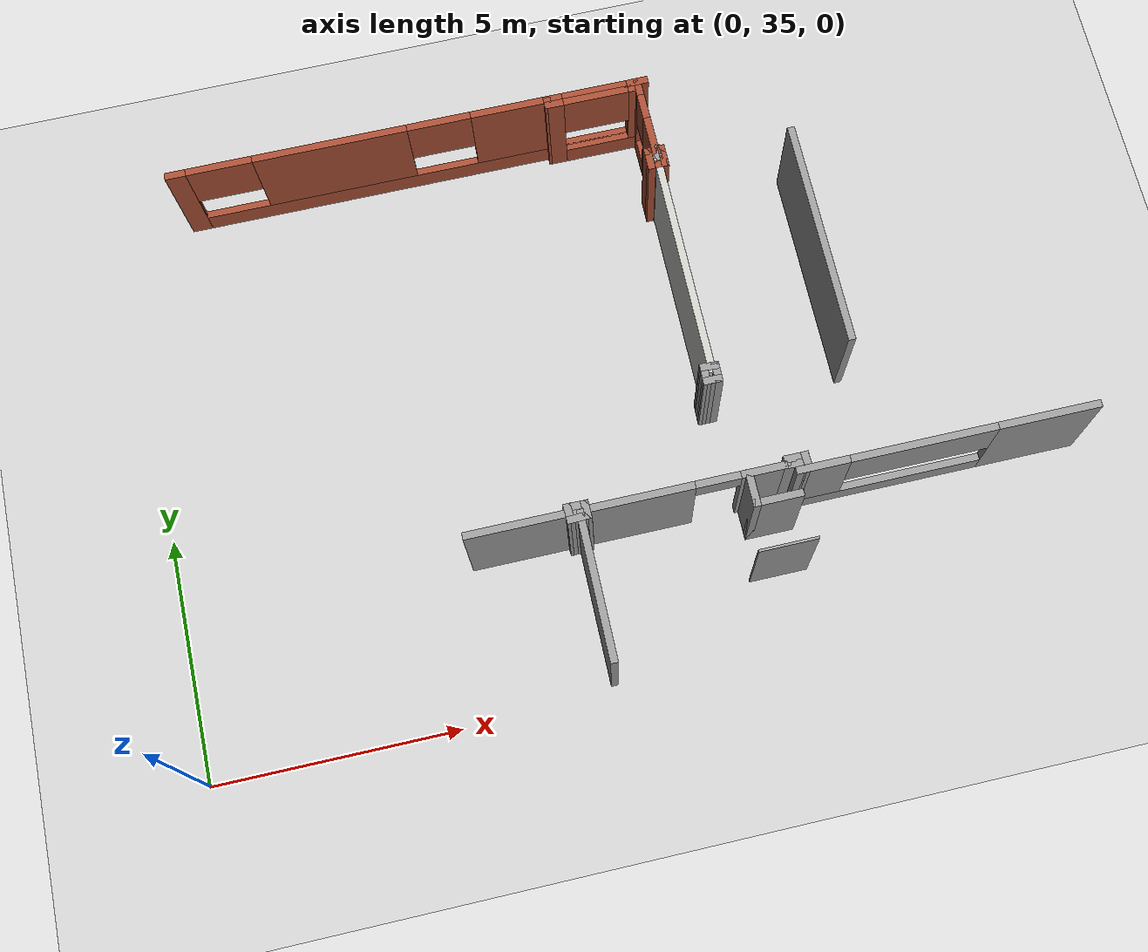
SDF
<sdf version="1.6">
 <world name="default">
  <model name="ground_plane">
   <static>1</static>
   <link name="link">
    <collision name="collision">
     <geometry><plane><normal>0 0 1</normal><size>100 100</size></plane></geometry>
     <surface><friction><ode><mu>100</mu><mu2>50</mu2></ode></friction></surface>
    </collision>
    <visual name="visual">
     <cast_shadows>0</cast_shadows>
     <geometry><plane><normal>0 0 1</normal><size>100 100</size></plane></geometry>
     <material>
      <script><uri>file://media/materials/scripts/gazebo.material</uri><name>Gazebo/Grey</name></script>
     </material>
    </visual>
   </link>
  </model>
  <model name="CVSSP">
   <pose>23.8714 24.094 0 0 -0 0</pose>
   <link name="Wall_302">
    <collision name="Wall_302_Collision">
     <geometry><box><size>0.356824 0.15 2.5</size></box></geometry>
     <pose>0 0 1.25 0 -0 0</pose>
    </collision>
    <visual name="Wall_302_Visual">
     <pose>0 0 1.25 0 -0 0</pose>
     <geometry><box><size>0.356824 0.15 2.5</size></box></geometry>
     <material>
      <script><uri>file://media/materials/scripts/gazebo.material</uri><name>Gazebo/Grey</name></script>
      <ambient>1 1 1 1</ambient>
     </material>
    </visual>
    <pose>-12.6319 21.0442 0 0 0 -1.55451</pose>
   </link>
   <link name="Wall_309">
    <collision name="Wall_309_Collision">
     <geometry><box><size>4.97737 0.15 2.5</size></box></geometry>
     <pose>0 0 1.25 0 -0 0</pose>
    </collision>
    <visual name="Wall_309_Visual">
     <pose>0 0 1.25 0 -0 0</pose>
     <geometry><box><size>4.97737 0.15 2.5</size></box></geometry>
     <material>
      <script><uri>file://media/materials/scripts/gazebo.material</uri><name>Gazebo/CeilingTiled</name></script>
      <ambient>0.588235 0.588235 0.588235 1</ambient>
     </material>
    </visual>
    <pose>-12.6619 18.6826 0 0 -0 1.56838</pose>
   </link>
   <link name="Wall_311">
    <collision name="Wall_311_Collision">
     <geometry><box><size>4.75 0.15 2.5</size></box></geometry>
     <pose>0 0 1.25 0 -0 0</pose>
    </collision>
    <visual name="Wall_311_Visual">
     <pose>0 0 1.25 0 -0 0</pose>
     <geometry><box><size>4.75 0.15 2.5</size></box></geometry>
     <material>
      <script><uri>file://media/materials/scripts/gazebo.material</uri><name>Gazebo/Grey</name></script>
      <ambient>0.588235 0.588235 0.588235 1</ambient>
     </material>
    </visual>
    <pose>-9.85033 18.612 0 0 0 -1.5708</pose>
   </link>
   <link name="Wall_359">
    <pose>-17.445 22.7195 0 0 0 -0.002346</pose>
    <visual name="Wall_359_Visual_0">
     <pose>-4.79661 0 1.25 0 -0 0</pose>
     <geometry><box><size>0.418451 0.15 2.5</size></box></geometry>
     <material>
      <script><uri>file://media/materials/scripts/gazebo.material</uri><name>Gazebo/Bricks</name></script>
      <ambient>1 1 1 1</ambient>
     </material>
    </visual>
    <collision name="Wall_359_Collision_0">
     <geometry><box><size>0.418451 0.15 2.5</size></box></geometry>
     <pose>-4.79661 0 1.25 0 -0 0</pose>
    </collision>
    <visual name="Wall_359_Visual_1">
     <pose>0.209225 0 0.25 0 -0 0</pose>
     <geometry><box><size>9.59323 0.15 0.5</size></box></geometry>
     <material>
      <script><uri>file://media/materials/scripts/gazebo.material</uri><name>Gazebo/Bricks</name></script>
      <ambient>1 1 1 1</ambient>
     </material>
    </visual>
    <collision name="Wall_359_Collision_1">
     <geometry><box><size>9.59323 0.15 0.5</size></box></geometry>
     <pose>0.209225 0 0.25 0 -0 0</pose>
    </collision>
    <visual name="Wall_359_Visual_2">
     <pose>-1.63846 0 1.5 0 -0 0</pose>
     <geometry><box><size>3.18757 0.15 2</size></box></geometry>
     <material>
      <script><uri>file://media/materials/scripts/gazebo.material</uri><name>Gazebo/Bricks</name></script>
      <ambient>1 1 1 1</ambient>
     </material>
    </visual>
    <collision name="Wall_359_Collision_2">
     <geometry><box><size>3.18757 0.15 2</size></box></geometry>
     <pose>-1.63846 0 1.5 0 -0 0</pose>
    </collision>
    <visual name="Wall_359_Visual_3">
     <pose>2.23874 0 1.5 0 -0 0</pose>
     <geometry><box><size>1.91586 0.15 2</size></box></geometry>
     <material>
      <script><uri>file://media/materials/scripts/gazebo.material</uri><name>Gazebo/Bricks</name></script>
      <ambient>1 1 1 1</ambient>
     </material>
    </visual>
    <collision name="Wall_359_Collision_3">
     <geometry><box><size>1.91586 0.15 2</size></box></geometry>
     <pose>2.23874 0 1.5 0 -0 0</pose>
    </collision>
    <visual name="Wall_359_Visual_4">
     <pose>4.78077 0 1.5 0 -0 0</pose>
     <geometry><box><size>0.450139 0.15 2</size></box></geometry>
     <material>
      <script><uri>file://media/materials/scripts/gazebo.material</uri><name>Gazebo/Bricks</name></script>
      <ambient>1 1 1 1</ambient>
     </material>
    </visual>
    <collision name="Wall_359_Collision_4">
     <geometry><box><size>0.450139 0.15 2</size></box></geometry>
     <pose>4.78077 0 1.5 0 -0 0</pose>
    </collision>
    <visual name="Wall_359_Visual_5">
     <pose>-3.90982 0 1.9 0 -0 0</pose>
     <geometry><box><size>1.35514 0.15 1.2</size></box></geometry>
     <material>
      <script><uri>file://media/materials/scripts/gazebo.material</uri><name>Gazebo/Bricks</name></script>
      <ambient>1 1 1 1</ambient>
     </material>
    </visual>
    <collision name="Wall_359_Collision_5">
     <geometry><box><size>1.35514 0.15 1.2</size></box></geometry>
     <pose>-3.90982 0 1.9 0 -0 0</pose>
    </collision>
    <visual name="Wall_359_Visual_6">
     <pose>0.618067 0 1.9 0 -0 0</pose>
     <geometry><box><size>1.32548 0.15 1.2</size></box></geometry>
     <material>
      <script><uri>file://media/materials/scripts/gazebo.material</uri><name>Gazebo/Bricks</name></script>
      <ambient>1 1 1 1</ambient>
     </material>
    </visual>
    <collision name="Wall_359_Collision_6">
     <geometry><box><size>1.32548 0.15 1.2</size></box></geometry>
     <pose>0.618067 0 1.9 0 -0 0</pose>
    </collision>
    <visual name="Wall_359_Visual_7">
     <pose>3.87618 0 1.9 0 -0 0</pose>
     <geometry><box><size>1.35903 0.15 1.2</size></box></geometry>
     <material>
      <script><uri>file://media/materials/scripts/gazebo.material</uri><name>Gazebo/Bricks</name></script>
      <ambient>1 1 1 1</ambient>
     </material>
    </visual>
    <collision name="Wall_359_Collision_7">
     <geometry><box><size>1.35903 0.15 1.2</size></box></geometry>
     <pose>3.87618 0 1.9 0 -0 0</pose>
    </collision>
   </link>
   <link name="Wall_364">
    <pose>-12.6622 21.8833 0 0 -0 1.57855</pose>
    <visual name="Wall_364_Visual_0">
     <pose>-0.444878 0 1.25 0 -0 0</pose>
     <geometry><box><size>0.834848 0.15 2.5</size></box></geometry>
     <material>
      <script><uri>file://media/materials/scripts/gazebo.material</uri><name>Gazebo/Bricks</name></script>
      <ambient>1 1 1 1</ambient>
     </material>
    </visual>
    <collision name="Wall_364_Collision_0">
     <geometry><box><size>0.834848 0.15 2.5</size></box></geometry>
     <pose>-0.444878 0 1.25 0 -0 0</pose>
    </collision>
    <visual name="Wall_364_Visual_1">
     <pose>0.417424 0 0.25 0 -0 0</pose>
     <geometry><box><size>0.889756 0.15 0.5</size></box></geometry>
     <material>
      <script><uri>file://media/materials/scripts/gazebo.material</uri><name>Gazebo/Bricks</name></script>
      <ambient>1 1 1 1</ambient>
     </material>
    </visual>
    <collision name="Wall_364_Collision_1">
     <geometry><box><size>0.889756 0.15 0.5</size></box></geometry>
     <pose>0.417424 0 0.25 0 -0 0</pose>
    </collision>
    <visual name="Wall_364_Visual_2">
     <pose>0.687151 0 1.5 0 -0 0</pose>
     <geometry><box><size>0.350302 0.15 2</size></box></geometry>
     <material>
      <script><uri>file://media/materials/scripts/gazebo.material</uri><name>Gazebo/Bricks</name></script>
      <ambient>1 1 1 1</ambient>
     </material>
    </visual>
    <collision name="Wall_364_Collision_2">
     <geometry><box><size>0.350302 0.15 2</size></box></geometry>
     <pose>0.687151 0 1.5 0 -0 0</pose>
    </collision>
    <visual name="Wall_364_Visual_3">
     <pose>0.242273 0 1.9 0 -0 0</pose>
     <geometry><box><size>0.539454 0.15 1.2</size></box></geometry>
     <material>
      <script><uri>file://media/materials/scripts/gazebo.material</uri><name>Gazebo/Bricks</name></script>
      <ambient>1 1 1 1</ambient>
     </material>
    </visual>
    <collision name="Wall_364_Collision_3">
     <geometry><box><size>0.539454 0.15 1.2</size></box></geometry>
     <pose>0.242273 0 1.9 0 -0 0</pose>
    </collision>
   </link>
   <link name="Wall_366">
    <collision name="Wall_366_Collision">
     <geometry><box><size>0.25 0.15 2.5</size></box></geometry>
     <pose>0 0 1.25 0 -0 0</pose>
    </collision>
    <visual name="Wall_366_Visual">
     <pose>0 0 1.25 0 -0 0</pose>
     <geometry><box><size>0.25 0.15 2.5</size></box></geometry>
     <material>
      <script><uri>file://media/materials/scripts/gazebo.material</uri><name>Gazebo/Bricks</name></script>
      <ambient>1 1 1 1</ambient>
     </material>
    </visual>
    <pose>-14.5641 22.637 0 0 0 -1.5708</pose>
   </link>
   <link name="Wall_367">
    <pose>-13.6341 22.584 0 0 0 -0.00315</pose>
    <visual name="Wall_367_Visual_0">
     <pose>-0.809801 0 1.25 0 -0 0</pose>
     <geometry><box><size>0.390731 0.15 2.5</size></box></geometry>
     <material>
      <script><uri>file://media/materials/scripts/gazebo.material</uri><name>Gazebo/Bricks</name></script>
      <ambient>1 1 1 1</ambient>
     </material>
    </visual>
    <collision name="Wall_367_Collision_0">
     <geometry><box><size>0.390731 0.15 2.5</size></box></geometry>
     <pose>-0.809801 0 1.25 0 -0 0</pose>
    </collision>
    <visual name="Wall_367_Visual_1">
     <pose>0.195366 0 0.25 0 -0 0</pose>
     <geometry><box><size>1.6196 0.15 0.5</size></box></geometry>
     <material>
      <script><uri>file://media/materials/scripts/gazebo.material</uri><name>Gazebo/Bricks</name></script>
      <ambient>1 1 1 1</ambient>
     </material>
    </visual>
    <collision name="Wall_367_Collision_1">
     <geometry><box><size>1.6196 0.15 0.5</size></box></geometry>
     <pose>0.195366 0 0.25 0 -0 0</pose>
    </collision>
    <visual name="Wall_367_Visual_2">
     <pose>0.874844 0 1.5 0 -0 0</pose>
     <geometry><box><size>0.260644 0.15 2</size></box></geometry>
     <material>
      <script><uri>file://media/materials/scripts/gazebo.material</uri><name>Gazebo/Bricks</name></script>
      <ambient>1 1 1 1</ambient>
     </material>
    </visual>
    <collision name="Wall_367_Collision_2">
     <geometry><box><size>0.260644 0.15 2</size></box></geometry>
     <pose>0.874844 0 1.5 0 -0 0</pose>
    </collision>
    <visual name="Wall_367_Visual_3">
     <pose>0.065044 0 1.9 0 -0 0</pose>
     <geometry><box><size>1.35896 0.15 1.2</size></box></geometry>
     <material>
      <script><uri>file://media/materials/scripts/gazebo.material</uri><name>Gazebo/Bricks</name></script>
      <ambient>1 1 1 1</ambient>
     </material>
    </visual>
    <collision name="Wall_367_Collision_3">
     <geometry><box><size>1.35896 0.15 1.2</size></box></geometry>
     <pose>0.065044 0 1.9 0 -0 0</pose>
    </collision>
   </link>
   <link name="Wall_416">
    <collision name="Wall_416_Collision">
     <geometry><box><size>3 0.15 2.5</size></box></geometry>
     <pose>0 0 1.25 0 -0 0</pose>
    </collision>
    <visual name="Wall_416_Visual">
     <pose>0 0 1.25 0 -0 0</pose>
     <geometry><box><size>3 0.15 2.5</size></box></geometry>
     <material>
      <script><uri>file://media/materials/scripts/gazebo.material</uri><name>Gazebo/Grey</name></script>
      <ambient>0.588235 0.588235 0.588235 1</ambient>
     </material>
    </visual>
    <pose>-15.7939 12.5789 0 0 0 -1.5708</pose>
   </link>
   <link name="Wall_420">
    <collision name="Wall_420_Collision">
     <geometry><box><size>1.18498 0.05 2.5</size></box></geometry>
     <pose>0 0 1.25 0 -0 0</pose>
    </collision>
    <visual name="Wall_420_Visual">
     <pose>0 0 1.25 0 -0 0</pose>
     <geometry><box><size>1.18498 0.05 2.5</size></box></geometry>
     <material>
      <script><uri>file://media/materials/scripts/gazebo.material</uri><name>Gazebo/Grey</name></script>
      <ambient>1 1 1 1</ambient>
     </material>
    </visual>
    <pose>-12.0954 12.5375 0 0 -0 0.000414</pose>
   </link>
   <link name="Wall_422">
    <collision name="Wall_422_Collision">
     <geometry><box><size>0.75 0.15 2.5</size></box></geometry>
     <pose>0 0 1.25 0 -0 0</pose>
    </collision>
    <visual name="Wall_422_Visual">
     <pose>0 0 1.25 0 -0 0</pose>
     <geometry><box><size>0.75 0.15 2.5</size></box></geometry>
     <material>
      <script><uri>file://media/materials/scripts/gazebo.material</uri><name>Gazebo/Grey</name></script>
      <ambient>1 1 1 1</ambient>
     </material>
    </visual>
    <pose>-12.4883 13.7563 0 0 0 -1.5708</pose>
   </link>
   <link name="Wall_423">
    <collision name="Wall_423_Collision">
     <geometry><box><size>1 0.15 2.5</size></box></geometry>
     <pose>0 0 1.25 0 -0 0</pose>
    </collision>
    <visual name="Wall_423_Visual">
     <pose>0 0 1.25 0 -0 0</pose>
     <geometry><box><size>1 0.15 2.5</size></box></geometry>
     <material>
      <script><uri>file://media/materials/scripts/gazebo.material</uri><name>Gazebo/Grey</name></script>
      <ambient>1 1 1 1</ambient>
     </material>
    </visual>
    <pose>-12.0633 13.4563 0 0 -0 0</pose>
   </link>
   <link name="Wall_625">
    <pose>-8.55211 13.8979 0 0 -0 3.14159</pose>
    <visual name="Wall_625_Visual_0">
     <pose>-2.01383 0 1.25 0 -0 0</pose>
     <geometry><box><size>2.06931 0.15 2.5</size></box></geometry>
     <material>
      <script><uri>file://media/materials/scripts/gazebo.material</uri><name>Gazebo/Grey</name></script>
      <ambient>1 1 1 1</ambient>
     </material>
    </visual>
    <collision name="Wall_625_Collision_0">
     <geometry><box><size>2.06931 0.15 2.5</size></box></geometry>
     <pose>-2.01383 0 1.25 0 -0 0</pose>
    </collision>
    <visual name="Wall_625_Visual_1">
     <pose>1.03465 0 0.25 0 -0 0</pose>
     <geometry><box><size>4.02766 0.15 0.5</size></box></geometry>
     <material>
      <script><uri>file://media/materials/scripts/gazebo.material</uri><name>Gazebo/Grey</name></script>
      <ambient>1 1 1 1</ambient>
     </material>
    </visual>
    <collision name="Wall_625_Collision_1">
     <geometry><box><size>4.02766 0.15 0.5</size></box></geometry>
     <pose>1.03465 0 0.25 0 -0 0</pose>
    </collision>
    <visual name="Wall_625_Visual_2">
     <pose>2.51124 0 1.5 0 -0 0</pose>
     <geometry><box><size>1.07449 0.15 2</size></box></geometry>
     <material>
      <script><uri>file://media/materials/scripts/gazebo.material</uri><name>Gazebo/Grey</name></script>
      <ambient>1 1 1 1</ambient>
     </material>
    </visual>
    <collision name="Wall_625_Collision_2">
     <geometry><box><size>1.07449 0.15 2</size></box></geometry>
     <pose>2.51124 0 1.5 0 -0 0</pose>
    </collision>
    <visual name="Wall_625_Visual_3">
     <pose>0.497408 0 1.9 0 -0 0</pose>
     <geometry><box><size>2.95317 0.15 1.2</size></box></geometry>
     <material>
      <script><uri>file://media/materials/scripts/gazebo.material</uri><name>Gazebo/Grey</name></script>
      <ambient>1 1 1 1</ambient>
     </material>
    </visual>
    <collision name="Wall_625_Collision_3">
     <geometry><box><size>2.95317 0.15 1.2</size></box></geometry>
     <pose>0.497408 0 1.9 0 -0 0</pose>
    </collision>
   </link>
   <link name="Wall_626">
    <collision name="Wall_626_Collision">
     <geometry><box><size>0.15 0.15 2.5</size></box></geometry>
     <pose>0 0 1.25 0 -0 0</pose>
    </collision>
    <visual name="Wall_626_Visual">
     <pose>0 0 1.25 0 -0 0</pose>
     <geometry><box><size>0.15 0.15 2.5</size></box></geometry>
     <material>
      <script><uri>file://media/materials/scripts/gazebo.material</uri><name>Gazebo/Grey</name></script>
      <ambient>1 1 1 1</ambient>
     </material>
    </visual>
    <pose>-11.5256 13.8979 0 0 -0 0</pose>
   </link>
   <link name="Wall_632">
    <collision name="Wall_632_Collision">
     <geometry><box><size>0.220797 0.15 2.5</size></box></geometry>
     <pose>0 0 1.25 0 -0 0</pose>
    </collision>
    <visual name="Wall_632_Visual">
     <pose>0 0 1.25 0 -0 0</pose>
     <geometry><box><size>0.220797 0.15 2.5</size></box></geometry>
     <material>
      <script><uri>file://media/materials/scripts/gazebo.material</uri><name>Gazebo/Grey</name></script>
      <ambient>1 1 1 1</ambient>
     </material>
    </visual>
    <pose>-11.6975 14.1255 0 0 -0 1.5708</pose>
   </link>
   <link name="Wall_633">
    <collision name="Wall_633_Collision">
     <geometry><box><size>0.494021 0.15 2.5</size></box></geometry>
     <pose>0 0 1.25 0 -0 0</pose>
    </collision>
    <visual name="Wall_633_Visual">
     <pose>0 0 1.25 0 -0 0</pose>
     <geometry><box><size>0.494021 0.15 2.5</size></box></geometry>
     <material>
      <script><uri>file://media/materials/scripts/gazebo.material</uri><name>Gazebo/Grey</name></script>
      <ambient>1 1 1 1</ambient>
     </material>
    </visual>
    <pose>-11.5256 14.1608 0 0 -0 0</pose>
   </link>
   <link name="Wall_634">
    <collision name="Wall_634_Collision">
     <geometry><box><size>0.413156 0.15 2.5</size></box></geometry>
     <pose>0 0 1.25 0 -0 0</pose>
    </collision>
    <visual name="Wall_634_Visual">
     <pose>0 0 1.25 0 -0 0</pose>
     <geometry><box><size>0.413156 0.15 2.5</size></box></geometry>
     <material>
      <script><uri>file://media/materials/scripts/gazebo.material</uri><name>Gazebo/Grey</name></script>
      <ambient>1 1 1 1</ambient>
     </material>
    </visual>
    <pose>-11.3486 14.0294 0 0 0 -1.53235</pose>
   </link>
   <link name="Wall_637">
    <collision name="Wall_637_Collision">
     <geometry><box><size>0.491084 0.15 2.5</size></box></geometry>
     <pose>0 0 1.25 0 -0 0</pose>
    </collision>
    <visual name="Wall_637_Visual">
     <pose>0 0 1.25 0 -0 0</pose>
     <geometry><box><size>0.491084 0.15 2.5</size></box></geometry>
     <material>
      <script><uri>file://media/materials/scripts/gazebo.material</uri><name>Gazebo/Grey</name></script>
      <ambient>1 1 1 1</ambient>
     </material>
    </visual>
    <pose>-15.8415 14.1619 0 0 0 -0.01282</pose>
   </link>
   <link name="Wall_638">
    <collision name="Wall_638_Collision">
     <geometry><box><size>0.377413 0.15 2.5</size></box></geometry>
     <pose>0 0 1.25 0 -0 0</pose>
    </collision>
    <visual name="Wall_638_Visual">
     <pose>0 0 1.25 0 -0 0</pose>
     <geometry><box><size>0.377413 0.15 2.5</size></box></geometry>
     <material>
      <script><uri>file://media/materials/scripts/gazebo.material</uri><name>Gazebo/Grey</name></script>
      <ambient>1 1 1 1</ambient>
     </material>
    </visual>
    <pose>-15.6688 14.046 0 0 0 -1.55157</pose>
   </link>
   <link name="Wall_639">
    <collision name="Wall_639_Collision">
     <geometry><box><size>0.48257 0.15 2.5</size></box></geometry>
     <pose>0 0 1.25 0 -0 0</pose>
    </collision>
    <visual name="Wall_639_Visual">
     <pose>0 0 1.25 0 -0 0</pose>
     <geometry><box><size>0.48257 0.15 2.5</size></box></geometry>
     <material>
      <script><uri>file://media/materials/scripts/gazebo.material</uri><name>Gazebo/Grey</name></script>
      <ambient>1 1 1 1</ambient>
     </material>
    </visual>
    <pose>-15.8327 13.9258 0 0 0 -3.10214</pose>
   </link>
   <link name="Wall_640">
    <collision name="Wall_640_Collision">
     <geometry><box><size>0.399387 0.15 2.5</size></box></geometry>
     <pose>0 0 1.25 0 -0 0</pose>
    </collision>
    <visual name="Wall_640_Visual">
     <pose>0 0 1.25 0 -0 0</pose>
     <geometry><box><size>0.399387 0.15 2.5</size></box></geometry>
     <material>
      <script><uri>file://media/materials/scripts/gazebo.material</uri><name>Gazebo/Grey</name></script>
      <ambient>1 1 1 1</ambient>
     </material>
    </visual>
    <pose>-16.0032 14.0438 0 0 -0 1.60587</pose>
   </link>
   <link name="Wall_650">
    <collision name="Wall_650_Collision">
     <geometry><box><size>0.380179 0.15 2.5</size></box></geometry>
     <pose>0 0 1.25 0 -0 0</pose>
    </collision>
    <visual name="Wall_650_Visual">
     <pose>0 0 1.25 0 -0 0</pose>
     <geometry><box><size>0.380179 0.15 2.5</size></box></geometry>
     <material>
      <script><uri>file://media/materials/scripts/gazebo.material</uri><name>Gazebo/Grey</name></script>
      <ambient>1 1 1 1</ambient>
     </material>
    </visual>
    <pose>-12.7047 16.3251 0 0 0 -0.076772</pose>
   </link>
   <link name="Wall_651">
    <collision name="Wall_651_Collision">
     <geometry><box><size>0.422777 0.15 2.5</size></box></geometry>
     <pose>0 0 1.25 0 -0 0</pose>
    </collision>
    <visual name="Wall_651_Visual">
     <pose>0 0 1.25 0 -0 0</pose>
     <geometry><box><size>0.422777 0.15 2.5</size></box></geometry>
     <material>
      <script><uri>file://media/materials/scripts/gazebo.material</uri><name>Gazebo/Grey</name></script>
      <ambient>1 1 1 1</ambient>
     </material>
    </visual>
    <pose>-12.5904 16.18 0 0 0 -1.5708</pose>
   </link>
   <link name="Wall_652">
    <collision name="Wall_652_Collision">
     <geometry><box><size>0.387619 0.15 2.5</size></box></geometry>
     <pose>0 0 1.25 0 -0 0</pose>
    </collision>
    <visual name="Wall_652_Visual">
     <pose>0 0 1.25 0 -0 0</pose>
     <geometry><box><size>0.387619 0.15 2.5</size></box></geometry>
     <material>
      <script><uri>file://media/materials/scripts/gazebo.material</uri><name>Gazebo/Grey</name></script>
      <ambient>1 1 1 1</ambient>
     </material>
    </visual>
    <pose>-12.7091 16.0437 0 0 -0 3.14159</pose>
   </link>
   <link name="Wall_653">
    <collision name="Wall_653_Collision">
     <geometry><box><size>0.440358 0.15 2.5</size></box></geometry>
     <pose>0 0 1.25 0 -0 0</pose>
    </collision>
    <visual name="Wall_653_Visual">
     <pose>0 0 1.25 0 -0 0</pose>
     <geometry><box><size>0.440358 0.15 2.5</size></box></geometry>
     <material>
      <script><uri>file://media/materials/scripts/gazebo.material</uri><name>Gazebo/Grey</name></script>
      <ambient>1 1 1 1</ambient>
     </material>
    </visual>
    <pose>-12.8234 16.1888 0 0 -0 1.5405</pose>
   </link>
   <link name="Wall_658">
    <collision name="Wall_658_Collision">
     <geometry><box><size>0.433881 0.15 2.5</size></box></geometry>
     <pose>0 0 1.25 0 -0 0</pose>
    </collision>
    <visual name="Wall_658_Visual">
     <pose>0 0 1.25 0 -0 0</pose>
     <geometry><box><size>0.433881 0.15 2.5</size></box></geometry>
     <material>
      <script><uri>file://media/materials/scripts/gazebo.material</uri><name>Gazebo/Bricks</name></script>
      <ambient>1 1 1 1</ambient>
     </material>
    </visual>
    <pose>-12.6759 20.7798 0 0 -0 3.14159</pose>
   </link>
   <link name="Wall_659">
    <collision name="Wall_659_Collision">
     <geometry><box><size>0.479662 0.15 2.5</size></box></geometry>
     <pose>0 0 1.25 0 -0 0</pose>
    </collision>
    <visual name="Wall_659_Visual">
     <pose>0 0 1.25 0 -0 0</pose>
     <geometry><box><size>0.479662 0.15 2.5</size></box></geometry>
     <material>
      <script><uri>file://media/materials/scripts/gazebo.material</uri><name>Gazebo/Bricks</name></script>
      <ambient>1 1 1 1</ambient>
     </material>
    </visual>
    <pose>-12.8176 20.9446 0 0 -0 1.5708</pose>
   </link>
   <link name="Wall_660">
    <collision name="Wall_660_Collision">
     <geometry><box><size>0.43335 0.15 2.5</size></box></geometry>
     <pose>0 0 1.25 0 -0 0</pose>
    </collision>
    <visual name="Wall_660_Visual">
     <pose>0 0 1.25 0 -0 0</pose>
     <geometry><box><size>0.43335 0.15 2.5</size></box></geometry>
     <material>
      <script><uri>file://media/materials/scripts/gazebo.material</uri><name>Gazebo/Bricks</name></script>
      <ambient>1 1 1 1</ambient>
     </material>
    </visual>
    <pose>-12.6759 21.1094 0 0 -0 0</pose>
   </link>
   <link name="Wall_661">
    <collision name="Wall_661_Collision">
     <geometry><box><size>0.479611 0.15 2.5</size></box></geometry>
     <pose>0 0 1.25 0 -0 0</pose>
    </collision>
    <visual name="Wall_661_Visual">
     <pose>0 0 1.25 0 -0 0</pose>
     <geometry><box><size>0.479611 0.15 2.5</size></box></geometry>
     <material>
      <script><uri>file://media/materials/scripts/gazebo.material</uri><name>Gazebo/Bricks</name></script>
      <ambient>1 1 1 1</ambient>
     </material>
    </visual>
    <pose>-12.5342 20.9446 0 0 0 -1.5708</pose>
   </link>
   <link name="Wall_73">
    <collision name="Wall_73_Collision">
     <geometry><box><size>1.97989 0.15 2.5</size></box></geometry>
     <pose>0 0 1.25 0 -0 0</pose>
    </collision>
    <visual name="Wall_73_Visual">
     <pose>0 0 1.25 0 -0 0</pose>
     <geometry><box><size>1.97989 0.15 2.5</size></box></geometry>
     <material>
      <script><uri>file://media/materials/scripts/gazebo.material</uri><name>Gazebo/Grey</name></script>
      <ambient>1 1 1 1</ambient>
     </material>
    </visual>
    <pose>-17.0678 14.055 0 0 -0 0</pose>
   </link>
   <link name="Wall_75">
    <pose>-13.9778 14.055 0 0 -0 0</pose>
    <visual name="Wall_75_Visual_0">
     <pose>-0.906372 0 1.25 0 -0 0</pose>
     <geometry><box><size>2.68726 0.15 2.5</size></box></geometry>
     <material>
      <script><uri>file://media/materials/scripts/gazebo.material</uri><name>Gazebo/Grey</name></script>
      <ambient>1 1 1 1</ambient>
     </material>
    </visual>
    <collision name="Wall_75_Collision_0">
     <geometry><box><size>2.68726 0.15 2.5</size></box></geometry>
     <pose>-0.906372 0 1.25 0 -0 0</pose>
    </collision>
    <visual name="Wall_75_Visual_1">
     <pose>1.79363 0 1.25 0 -0 0</pose>
     <geometry><box><size>0.912743 0.15 2.5</size></box></geometry>
     <material>
      <script><uri>file://media/materials/scripts/gazebo.material</uri><name>Gazebo/Grey</name></script>
      <ambient>1 1 1 1</ambient>
     </material>
    </visual>
    <collision name="Wall_75_Collision_1">
     <geometry><box><size>0.912743 0.15 2.5</size></box></geometry>
     <pose>1.79363 0 1.25 0 -0 0</pose>
    </collision>
    <visual name="Wall_75_Visual_2">
     <pose>0.887257 0 2.25 0 -0 0</pose>
     <geometry><box><size>0.9 0.15 0.5</size></box></geometry>
     <material>
      <script><uri>file://media/materials/scripts/gazebo.material</uri><name>Gazebo/Grey</name></script>
      <ambient>1 1 1 1</ambient>
     </material>
    </visual>
    <collision name="Wall_75_Collision_2">
     <geometry><box><size>0.9 0.15 0.5</size></box></geometry>
     <pose>0.887257 0 2.25 0 -0 0</pose>
    </collision>
   </link>
   <link name="Wall_76">
    <collision name="Wall_76_Collision">
     <geometry><box><size>0.466115 0.15 2.5</size></box></geometry>
     <pose>0 0 1.25 0 -0 0</pose>
    </collision>
    <visual name="Wall_76_Visual">
     <pose>0 0 1.25 0 -0 0</pose>
     <geometry><box><size>0.466115 0.15 2.5</size></box></geometry>
     <material>
      <script><uri>file://media/materials/scripts/gazebo.material</uri><name>Gazebo/Grey</name></script>
      <ambient>1 1 1 1</ambient>
     </material>
    </visual>
    <pose>-11.6451 14.045 0 0 0 -0.063136</pose>
   </link>
   <static>1</static>
  </model>
 </world>
</sdf>
